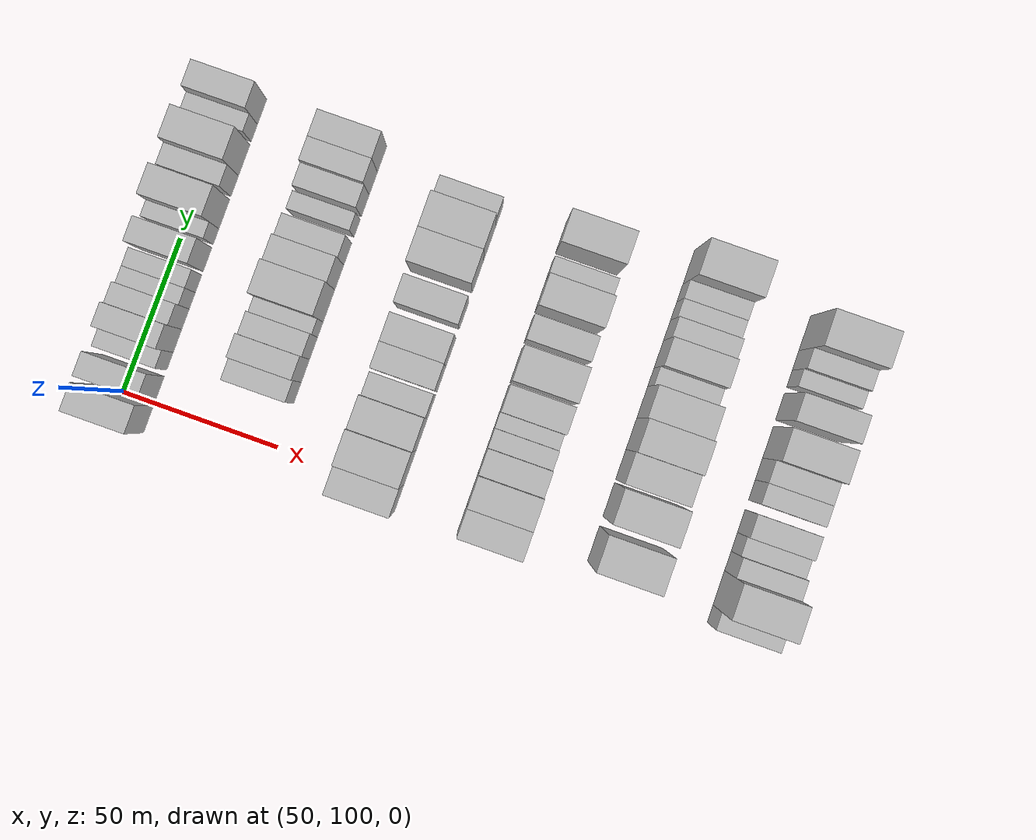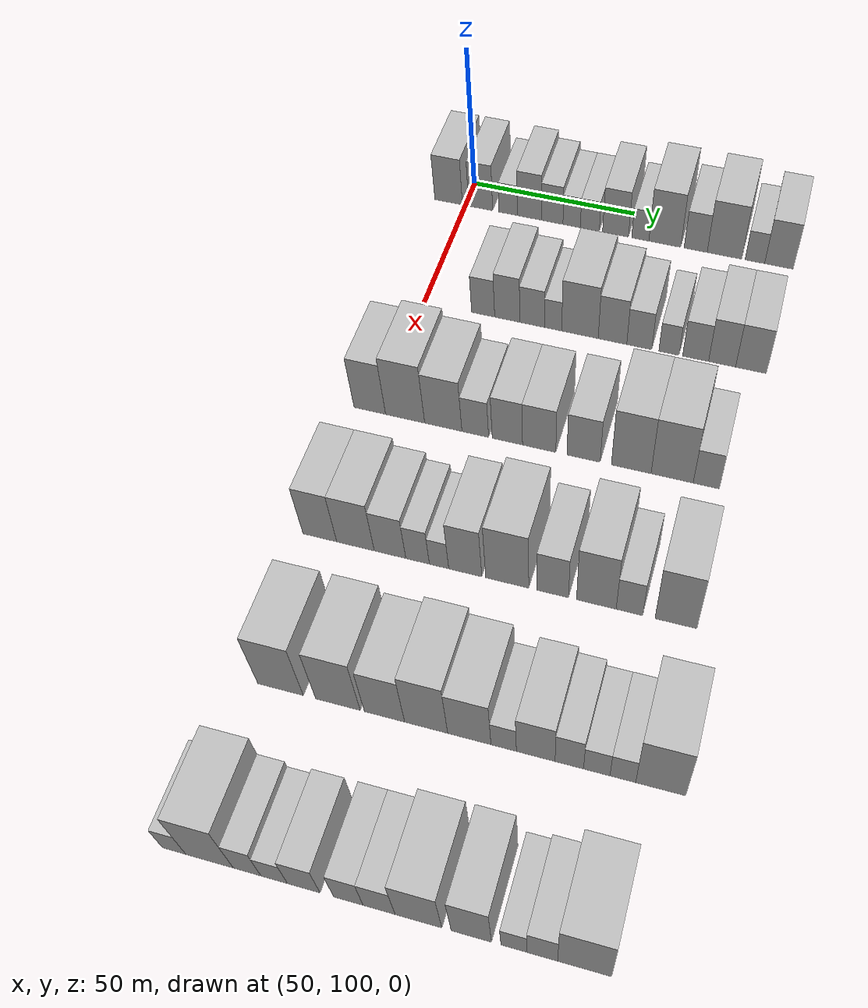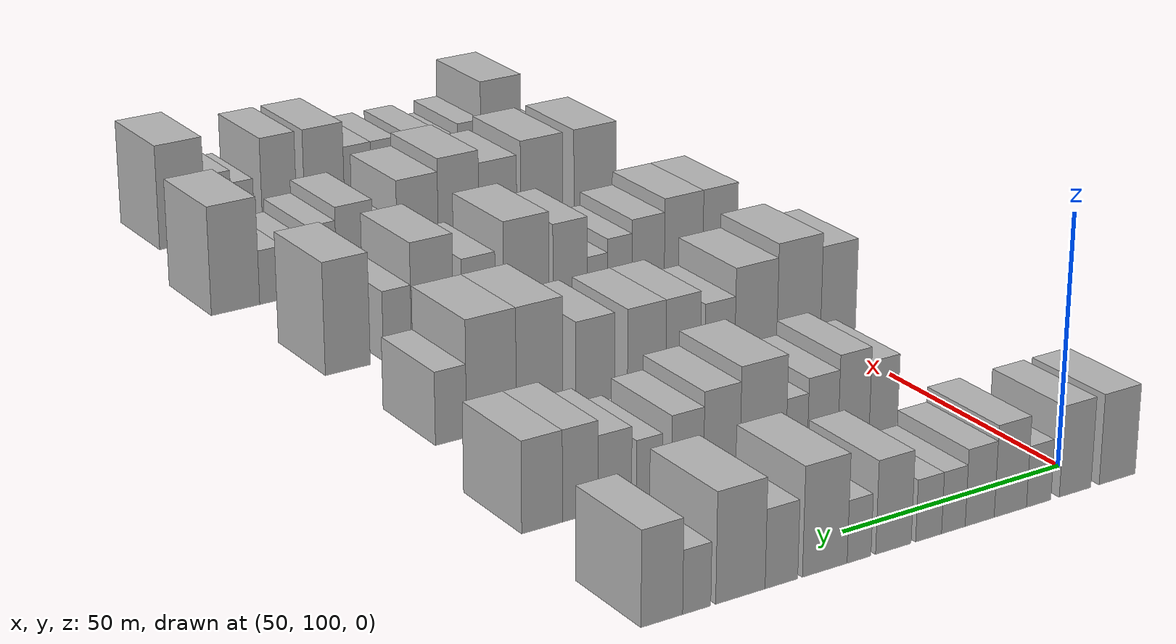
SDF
<sdf version="1.6">
 <world name="default">
  <model name="building_77">
   <static>1</static>
   <pose>50.0000 94.6935 0 0.000000 0.000000 0.000000</pose>
   <link name="link">
    <pose>0 0 9.00 0 0 0</pose>
    <collision name="collision"><geometry><box><size>20.0000 8.7373 18.0000</size></box></geometry></collision>
    <visual name="visual">
     <cast_shadows>0</cast_shadows>
     <geometry><box><size>20.0000 8.7373 18.0000</size></box></geometry>
     <material>
      <script>
       <uri>model://HANNAS_wall/materials/scripts</uri>
       <uri>model://HANNAS_wall/materials/textures</uri>
       <name>vrc/HANNAS_wall</name>
      </script>
     </material>
    </visual>
   </link>
  </model>
  <model name="building_78">
   <static>1</static>
   <pose>50.0000 104.8291 0 0.000000 0.000000 0.000000</pose>
   <link name="link">
    <pose>0 0 9.00 0 0 0</pose>
    <collision name="collision"><geometry><box><size>20.0000 7.5340 18.0000</size></box></geometry></collision>
    <visual name="visual">
     <cast_shadows>0</cast_shadows>
     <geometry><box><size>20.0000 7.5340 18.0000</size></box></geometry>
     <material>
      <script>
       <uri>model://HANNAS_wall/materials/scripts</uri>
       <uri>model://HANNAS_wall/materials/textures</uri>
       <name>vrc/HANNAS_wall</name>
      </script>
     </material>
    </visual>
   </link>
  </model>
  <model name="building_79">
   <static>1</static>
   <pose>50.0000 113.4601 0 0.000000 0.000000 0.000000</pose>
   <link name="link">
    <pose>0 0 6.00 0 0 0</pose>
    <collision name="collision"><geometry><box><size>20.0000 5.7279 12.0000</size></box></geometry></collision>
    <visual name="visual">
     <cast_shadows>0</cast_shadows>
     <geometry><box><size>20.0000 5.7279 12.0000</size></box></geometry>
     <material>
      <script>
       <uri>model://HANNAS_wall/materials/scripts</uri>
       <uri>model://HANNAS_wall/materials/textures</uri>
       <name>vrc/HANNAS_wall</name>
      </script>
     </material>
    </visual>
   </link>
  </model>
  <model name="building_80">
   <static>1</static>
   <pose>50.0000 120.0765 0 0.000000 0.000000 0.000000</pose>
   <link name="link">
    <pose>0 0 9.00 0 0 0</pose>
    <collision name="collision"><geometry><box><size>20.0000 7.5049 18.0000</size></box></geometry></collision>
    <visual name="visual">
     <cast_shadows>0</cast_shadows>
     <geometry><box><size>20.0000 7.5049 18.0000</size></box></geometry>
     <material>
      <script>
       <uri>model://HANNAS_wall/materials/scripts</uri>
       <uri>model://HANNAS_wall/materials/textures</uri>
       <name>vrc/HANNAS_wall</name>
      </script>
     </material>
    </visual>
   </link>
  </model>
  <model name="building_81">
   <static>1</static>
   <pose>50.0000 127.1485 0 0.000000 0.000000 0.000000</pose>
   <link name="link">
    <pose>0 0 7.50 0 0 0</pose>
    <collision name="collision"><geometry><box><size>20.0000 6.6391 15.0000</size></box></geometry></collision>
    <visual name="visual">
     <cast_shadows>0</cast_shadows>
     <geometry><box><size>20.0000 6.6391 15.0000</size></box></geometry>
     <material>
      <script>
       <uri>model://HANNAS_wall/materials/scripts</uri>
       <uri>model://HANNAS_wall/materials/textures</uri>
       <name>vrc/HANNAS_wall</name>
      </script>
     </material>
    </visual>
   </link>
  </model>
  <model name="building_82">
   <static>1</static>
   <pose>50.0000 133.1500 0 0.000000 0.000000 0.000000</pose>
   <link name="link">
    <pose>0 0 6.00 0 0 0</pose>
    <collision name="collision"><geometry><box><size>20.0000 5.3638 12.0000</size></box></geometry></collision>
    <visual name="visual">
     <cast_shadows>0</cast_shadows>
     <geometry><box><size>20.0000 5.3638 12.0000</size></box></geometry>
     <material>
      <script>
       <uri>model://HANNAS_wall/materials/scripts</uri>
       <uri>model://HANNAS_wall/materials/textures</uri>
       <name>vrc/HANNAS_wall</name>
      </script>
     </material>
    </visual>
   </link>
  </model>
  <model name="building_83">
   <static>1</static>
   <pose>50.0000 138.7383 0 0.000000 0.000000 0.000000</pose>
   <link name="link">
    <pose>0 0 6.00 0 0 0</pose>
    <collision name="collision"><geometry><box><size>20.0000 5.8129 12.0000</size></box></geometry></collision>
    <visual name="visual">
     <cast_shadows>0</cast_shadows>
     <geometry><box><size>20.0000 5.8129 12.0000</size></box></geometry>
     <material>
      <script>
       <uri>model://HANNAS_wall/materials/scripts</uri>
       <uri>model://HANNAS_wall/materials/textures</uri>
       <name>vrc/HANNAS_wall</name>
      </script>
     </material>
    </visual>
   </link>
  </model>
  <model name="building_84">
   <static>1</static>
   <pose>50.0000 146.5757 0 0.000000 0.000000 0.000000</pose>
   <link name="link">
    <pose>0 0 9.00 0 0 0</pose>
    <collision name="collision"><geometry><box><size>20.0000 7.8618 18.0000</size></box></geometry></collision>
    <visual name="visual">
     <cast_shadows>0</cast_shadows>
     <geometry><box><size>20.0000 7.8618 18.0000</size></box></geometry>
     <material>
      <script>
       <uri>model://HANNAS_wall/materials/scripts</uri>
       <uri>model://HANNAS_wall/materials/textures</uri>
       <name>vrc/HANNAS_wall</name>
      </script>
     </material>
    </visual>
   </link>
  </model>
  <model name="building_85">
   <static>1</static>
   <pose>50.0000 154.1038 0 0.000000 0.000000 0.000000</pose>
   <link name="link">
    <pose>0 0 6.00 0 0 0</pose>
    <collision name="collision"><geometry><box><size>20.0000 5.1944 12.0000</size></box></geometry></collision>
    <visual name="visual">
     <cast_shadows>0</cast_shadows>
     <geometry><box><size>20.0000 5.1944 12.0000</size></box></geometry>
     <material>
      <script>
       <uri>model://HANNAS_wall/materials/scripts</uri>
       <uri>model://HANNAS_wall/materials/textures</uri>
       <name>vrc/HANNAS_wall</name>
      </script>
     </material>
    </visual>
   </link>
  </model>
  <model name="building_86">
   <static>1</static>
   <pose>50.0000 161.5006 0 0.000000 0.000000 0.000000</pose>
   <link name="link">
    <pose>0 0 10.50 0 0 0</pose>
    <collision name="collision"><geometry><box><size>20.0000 9.5993 21.0000</size></box></geometry></collision>
    <visual name="visual">
     <cast_shadows>0</cast_shadows>
     <geometry><box><size>20.0000 9.5993 21.0000</size></box></geometry>
     <material>
      <script>
       <uri>model://HANNAS_wall/materials/scripts</uri>
       <uri>model://HANNAS_wall/materials/textures</uri>
       <name>vrc/HANNAS_wall</name>
      </script>
     </material>
    </visual>
   </link>
  </model>
  <model name="building_87">
   <static>1</static>
   <pose>50.0000 170.7389 0 0.000000 0.000000 0.000000</pose>
   <link name="link">
    <pose>0 0 7.50 0 0 0</pose>
    <collision name="collision"><geometry><box><size>20.0000 6.8772 15.0000</size></box></geometry></collision>
    <visual name="visual">
     <cast_shadows>0</cast_shadows>
     <geometry><box><size>20.0000 6.8772 15.0000</size></box></geometry>
     <material>
      <script>
       <uri>model://HANNAS_wall/materials/scripts</uri>
       <uri>model://HANNAS_wall/materials/textures</uri>
       <name>vrc/HANNAS_wall</name>
      </script>
     </material>
    </visual>
   </link>
  </model>
  <model name="building_88">
   <static>1</static>
   <pose>50.0000 179.3032 0 0.000000 0.000000 0.000000</pose>
   <link name="link">
    <pose>0 0 10.50 0 0 0</pose>
    <collision name="collision"><geometry><box><size>20.0000 10.2516 21.0000</size></box></geometry></collision>
    <visual name="visual">
     <cast_shadows>0</cast_shadows>
     <geometry><box><size>20.0000 10.2516 21.0000</size></box></geometry>
     <material>
      <script>
       <uri>model://HANNAS_wall/materials/scripts</uri>
       <uri>model://HANNAS_wall/materials/textures</uri>
       <name>vrc/HANNAS_wall</name>
      </script>
     </material>
    </visual>
   </link>
  </model>
  <model name="building_89">
   <static>1</static>
   <pose>50.0000 188.2996 0 0.000000 0.000000 0.000000</pose>
   <link name="link">
    <pose>0 0 6.00 0 0 0</pose>
    <collision name="collision"><geometry><box><size>20.0000 5.7411 12.0000</size></box></geometry></collision>
    <visual name="visual">
     <cast_shadows>0</cast_shadows>
     <geometry><box><size>20.0000 5.7411 12.0000</size></box></geometry>
     <material>
      <script>
       <uri>model://HANNAS_wall/materials/scripts</uri>
       <uri>model://HANNAS_wall/materials/textures</uri>
       <name>vrc/HANNAS_wall</name>
      </script>
     </material>
    </visual>
   </link>
  </model>
  <model name="building_90">
   <static>1</static>
   <pose>50.0000 195.3568 0 0.000000 0.000000 0.000000</pose>
   <link name="link">
    <pose>0 0 9.00 0 0 0</pose>
    <collision name="collision"><geometry><box><size>20.0000 8.3734 18.0000</size></box></geometry></collision>
    <visual name="visual">
     <cast_shadows>0</cast_shadows>
     <geometry><box><size>20.0000 8.3734 18.0000</size></box></geometry>
     <material>
      <script>
       <uri>model://HANNAS_wall/materials/scripts</uri>
       <uri>model://HANNAS_wall/materials/textures</uri>
       <name>vrc/HANNAS_wall</name>
      </script>
     </material>
    </visual>
   </link>
  </model>
  <model name="building_210">
   <static>1</static>
   <pose>90.0000 117.4667 0 0.000000 0.000000 0.000000</pose>
   <link name="link">
    <pose>0 0 7.50 0 0 0</pose>
    <collision name="collision"><geometry><box><size>20.0000 6.7773 15.0000</size></box></geometry></collision>
    <visual name="visual">
     <cast_shadows>0</cast_shadows>
     <geometry><box><size>20.0000 6.7773 15.0000</size></box></geometry>
     <material>
      <script>
       <uri>model://HANNAS_wall/materials/scripts</uri>
       <uri>model://HANNAS_wall/materials/textures</uri>
       <name>vrc/HANNAS_wall</name>
      </script>
     </material>
    </visual>
   </link>
  </model>
  <model name="building_211">
   <static>1</static>
   <pose>90.0000 124.5469 0 0.000000 0.000000 0.000000</pose>
   <link name="link">
    <pose>0 0 9.00 0 0 0</pose>
    <collision name="collision"><geometry><box><size>20.0000 7.3831 18.0000</size></box></geometry></collision>
    <visual name="visual">
     <cast_shadows>0</cast_shadows>
     <geometry><box><size>20.0000 7.3831 18.0000</size></box></geometry>
     <material>
      <script>
       <uri>model://HANNAS_wall/materials/scripts</uri>
       <uri>model://HANNAS_wall/materials/textures</uri>
       <name>vrc/HANNAS_wall</name>
      </script>
     </material>
    </visual>
   </link>
  </model>
  <model name="building_212">
   <static>1</static>
   <pose>90.0000 131.8180 0 0.000000 0.000000 0.000000</pose>
   <link name="link">
    <pose>0 0 7.50 0 0 0</pose>
    <collision name="collision"><geometry><box><size>20.0000 7.1590 15.0000</size></box></geometry></collision>
    <visual name="visual">
     <cast_shadows>0</cast_shadows>
     <geometry><box><size>20.0000 7.1590 15.0000</size></box></geometry>
     <material>
      <script>
       <uri>model://HANNAS_wall/materials/scripts</uri>
       <uri>model://HANNAS_wall/materials/textures</uri>
       <name>vrc/HANNAS_wall</name>
      </script>
     </material>
    </visual>
   </link>
  </model>
  <model name="building_213">
   <static>1</static>
   <pose>90.0000 137.8737 0 0.000000 0.000000 0.000000</pose>
   <link name="link">
    <pose>0 0 6.00 0 0 0</pose>
    <collision name="collision"><geometry><box><size>20.0000 4.9524 12.0000</size></box></geometry></collision>
    <visual name="visual">
     <cast_shadows>0</cast_shadows>
     <geometry><box><size>20.0000 4.9524 12.0000</size></box></geometry>
     <material>
      <script>
       <uri>model://HANNAS_wall/materials/scripts</uri>
       <uri>model://HANNAS_wall/materials/textures</uri>
       <name>vrc/HANNAS_wall</name>
      </script>
     </material>
    </visual>
   </link>
  </model>
  <model name="building_214">
   <static>1</static>
   <pose>90.0000 145.5981 0 0.000000 0.000000 0.000000</pose>
   <link name="link">
    <pose>0 0 10.50 0 0 0</pose>
    <collision name="collision"><geometry><box><size>20.0000 10.4965 21.0000</size></box></geometry></collision>
    <visual name="visual">
     <cast_shadows>0</cast_shadows>
     <geometry><box><size>20.0000 10.4965 21.0000</size></box></geometry>
     <material>
      <script>
       <uri>model://HANNAS_wall/materials/scripts</uri>
       <uri>model://HANNAS_wall/materials/textures</uri>
       <name>vrc/HANNAS_wall</name>
      </script>
     </material>
    </visual>
   </link>
  </model>
  <model name="building_215">
   <static>1</static>
   <pose>90.0000 154.9181 0 0.000000 0.000000 0.000000</pose>
   <link name="link">
    <pose>0 0 9.00 0 0 0</pose>
    <collision name="collision"><geometry><box><size>20.0000 8.1435 18.0000</size></box></geometry></collision>
    <visual name="visual">
     <cast_shadows>0</cast_shadows>
     <geometry><box><size>20.0000 8.1435 18.0000</size></box></geometry>
     <material>
      <script>
       <uri>model://HANNAS_wall/materials/scripts</uri>
       <uri>model://HANNAS_wall/materials/textures</uri>
       <name>vrc/HANNAS_wall</name>
      </script>
     </material>
    </visual>
   </link>
  </model>
  <model name="building_216">
   <static>1</static>
   <pose>90.0000 162.5359 0 0.000000 0.000000 0.000000</pose>
   <link name="link">
    <pose>0 0 7.50 0 0 0</pose>
    <collision name="collision"><geometry><box><size>20.0000 7.0922 15.0000</size></box></geometry></collision>
    <visual name="visual">
     <cast_shadows>0</cast_shadows>
     <geometry><box><size>20.0000 7.0922 15.0000</size></box></geometry>
     <material>
      <script>
       <uri>model://HANNAS_wall/materials/scripts</uri>
       <uri>model://HANNAS_wall/materials/textures</uri>
       <name>vrc/HANNAS_wall</name>
      </script>
     </material>
    </visual>
   </link>
  </model>
  <model name="building_217">
   <static>1</static>
   <pose>90.0000 170.9199 0 0.000000 0.000000 0.000000</pose>
   <link name="link">
    <pose>0 0 6.00 0 0 0</pose>
    <collision name="collision"><geometry><box><size>20.0000 5.6758 12.0000</size></box></geometry></collision>
    <visual name="visual">
     <cast_shadows>0</cast_shadows>
     <geometry><box><size>20.0000 5.6758 12.0000</size></box></geometry>
     <material>
      <script>
       <uri>model://HANNAS_wall/materials/scripts</uri>
       <uri>model://HANNAS_wall/materials/textures</uri>
       <name>vrc/HANNAS_wall</name>
      </script>
     </material>
    </visual>
   </link>
  </model>
  <model name="building_218">
   <static>1</static>
   <pose>90.0000 178.3752 0 0.000000 0.000000 0.000000</pose>
   <link name="link">
    <pose>0 0 7.50 0 0 0</pose>
    <collision name="collision"><geometry><box><size>20.0000 7.2348 15.0000</size></box></geometry></collision>
    <visual name="visual">
     <cast_shadows>0</cast_shadows>
     <geometry><box><size>20.0000 7.2348 15.0000</size></box></geometry>
     <material>
      <script>
       <uri>model://HANNAS_wall/materials/scripts</uri>
       <uri>model://HANNAS_wall/materials/textures</uri>
       <name>vrc/HANNAS_wall</name>
      </script>
     </material>
    </visual>
   </link>
  </model>
  <model name="building_219">
   <static>1</static>
   <pose>90.0000 185.7422 0 0.000000 0.000000 0.000000</pose>
   <link name="link">
    <pose>0 0 9.00 0 0 0</pose>
    <collision name="collision"><geometry><box><size>20.0000 7.4992 18.0000</size></box></geometry></collision>
    <visual name="visual">
     <cast_shadows>0</cast_shadows>
     <geometry><box><size>20.0000 7.4992 18.0000</size></box></geometry>
     <material>
      <script>
       <uri>model://HANNAS_wall/materials/scripts</uri>
       <uri>model://HANNAS_wall/materials/textures</uri>
       <name>vrc/HANNAS_wall</name>
      </script>
     </material>
    </visual>
   </link>
  </model>
  <model name="building_220">
   <static>1</static>
   <pose>90.0000 193.7392 0 0.000000 0.000000 0.000000</pose>
   <link name="link">
    <pose>0 0 9.00 0 0 0</pose>
    <collision name="collision"><geometry><box><size>20.0000 8.4949 18.0000</size></box></geometry></collision>
    <visual name="visual">
     <cast_shadows>0</cast_shadows>
     <geometry><box><size>20.0000 8.4949 18.0000</size></box></geometry>
     <material>
      <script>
       <uri>model://HANNAS_wall/materials/scripts</uri>
       <uri>model://HANNAS_wall/materials/textures</uri>
       <name>vrc/HANNAS_wall</name>
      </script>
     </material>
    </visual>
   </link>
  </model>
  <model name="building_349">
   <static>1</static>
   <pose>130.0000 97.7997 0 0.000000 0.000000 0.000000</pose>
   <link name="link">
    <pose>0 0 10.50 0 0 0</pose>
    <collision name="collision"><geometry><box><size>20.0000 8.8986 21.0000</size></box></geometry></collision>
    <visual name="visual">
     <cast_shadows>0</cast_shadows>
     <geometry><box><size>20.0000 8.8986 21.0000</size></box></geometry>
     <material>
      <script>
       <uri>model://HANNAS_wall/materials/scripts</uri>
       <uri>model://HANNAS_wall/materials/textures</uri>
       <name>vrc/HANNAS_wall</name>
      </script>
     </material>
    </visual>
   </link>
  </model>
  <model name="building_350">
   <static>1</static>
   <pose>130.0000 107.7128 0 0.000000 0.000000 0.000000</pose>
   <link name="link">
    <pose>0 0 12.00 0 0 0</pose>
    <collision name="collision"><geometry><box><size>20.0000 10.9276 24.0000</size></box></geometry></collision>
    <visual name="visual">
     <cast_shadows>0</cast_shadows>
     <geometry><box><size>20.0000 10.9276 24.0000</size></box></geometry>
     <material>
      <script>
       <uri>model://HANNAS_wall/materials/scripts</uri>
       <uri>model://HANNAS_wall/materials/textures</uri>
       <name>vrc/HANNAS_wall</name>
      </script>
     </material>
    </visual>
   </link>
  </model>
  <model name="building_351">
   <static>1</static>
   <pose>130.0000 118.3337 0 0.000000 0.000000 0.000000</pose>
   <link name="link">
    <pose>0 0 10.50 0 0 0</pose>
    <collision name="collision"><geometry><box><size>20.0000 10.3141 21.0000</size></box></geometry></collision>
    <visual name="visual">
     <cast_shadows>0</cast_shadows>
     <geometry><box><size>20.0000 10.3141 21.0000</size></box></geometry>
     <material>
      <script>
       <uri>model://HANNAS_wall/materials/scripts</uri>
       <uri>model://HANNAS_wall/materials/textures</uri>
       <name>vrc/HANNAS_wall</name>
      </script>
     </material>
    </visual>
   </link>
  </model>
  <model name="building_352">
   <static>1</static>
   <pose>130.0000 127.1517 0 0.000000 0.000000 0.000000</pose>
   <link name="link">
    <pose>0 0 7.50 0 0 0</pose>
    <collision name="collision"><geometry><box><size>20.0000 7.3220 15.0000</size></box></geometry></collision>
    <visual name="visual">
     <cast_shadows>0</cast_shadows>
     <geometry><box><size>20.0000 7.3220 15.0000</size></box></geometry>
     <material>
      <script>
       <uri>model://HANNAS_wall/materials/scripts</uri>
       <uri>model://HANNAS_wall/materials/textures</uri>
       <name>vrc/HANNAS_wall</name>
      </script>
     </material>
    </visual>
   </link>
  </model>
  <model name="building_353">
   <static>1</static>
   <pose>130.0000 135.9371 0 0.000000 0.000000 0.000000</pose>
   <link name="link">
    <pose>0 0 9.00 0 0 0</pose>
    <collision name="collision"><geometry><box><size>20.0000 8.2489 18.0000</size></box></geometry></collision>
    <visual name="visual">
     <cast_shadows>0</cast_shadows>
     <geometry><box><size>20.0000 8.2489 18.0000</size></box></geometry>
     <material>
      <script>
       <uri>model://HANNAS_wall/materials/scripts</uri>
       <uri>model://HANNAS_wall/materials/textures</uri>
       <name>vrc/HANNAS_wall</name>
      </script>
     </material>
    </visual>
   </link>
  </model>
  <model name="building_354">
   <static>1</static>
   <pose>130.0000 144.5602 0 0.000000 0.000000 0.000000</pose>
   <link name="link">
    <pose>0 0 9.00 0 0 0</pose>
    <collision name="collision"><geometry><box><size>20.0000 8.9973 18.0000</size></box></geometry></collision>
    <visual name="visual">
     <cast_shadows>0</cast_shadows>
     <geometry><box><size>20.0000 8.9973 18.0000</size></box></geometry>
     <material>
      <script>
       <uri>model://HANNAS_wall/materials/scripts</uri>
       <uri>model://HANNAS_wall/materials/textures</uri>
       <name>vrc/HANNAS_wall</name>
      </script>
     </material>
    </visual>
   </link>
  </model>
  <model name="building_355">
   <static>1</static>
   <pose>130.0000 156.4949 0 0.000000 0.000000 0.000000</pose>
   <link name="link">
    <pose>0 0 9.00 0 0 0</pose>
    <collision name="collision"><geometry><box><size>20.0000 8.8720 18.0000</size></box></geometry></collision>
    <visual name="visual">
     <cast_shadows>0</cast_shadows>
     <geometry><box><size>20.0000 8.8720 18.0000</size></box></geometry>
     <material>
      <script>
       <uri>model://HANNAS_wall/materials/scripts</uri>
       <uri>model://HANNAS_wall/materials/textures</uri>
       <name>vrc/HANNAS_wall</name>
      </script>
     </material>
    </visual>
   </link>
  </model>
  <model name="building_356">
   <static>1</static>
   <pose>130.0000 169.1600 0 0.000000 0.000000 0.000000</pose>
   <link name="link">
    <pose>0 0 12.00 0 0 0</pose>
    <collision name="collision"><geometry><box><size>20.0000 10.4582 24.0000</size></box></geometry></collision>
    <visual name="visual">
     <cast_shadows>0</cast_shadows>
     <geometry><box><size>20.0000 10.4582 24.0000</size></box></geometry>
     <material>
      <script>
       <uri>model://HANNAS_wall/materials/scripts</uri>
       <uri>model://HANNAS_wall/materials/textures</uri>
       <name>vrc/HANNAS_wall</name>
      </script>
     </material>
    </visual>
   </link>
  </model>
  <model name="building_357">
   <static>1</static>
   <pose>130.0000 179.9009 0 0.000000 0.000000 0.000000</pose>
   <link name="link">
    <pose>0 0 12.00 0 0 0</pose>
    <collision name="collision"><geometry><box><size>20.0000 11.0237 24.0000</size></box></geometry></collision>
    <visual name="visual">
     <cast_shadows>0</cast_shadows>
     <geometry><box><size>20.0000 11.0237 24.0000</size></box></geometry>
     <material>
      <script>
       <uri>model://HANNAS_wall/materials/scripts</uri>
       <uri>model://HANNAS_wall/materials/textures</uri>
       <name>vrc/HANNAS_wall</name>
      </script>
     </material>
    </visual>
   </link>
  </model>
  <model name="building_358">
   <static>1</static>
   <pose>130.0000 188.8137 0 0.000000 0.000000 0.000000</pose>
   <link name="link">
    <pose>0 0 7.50 0 0 0</pose>
    <collision name="collision"><geometry><box><size>20.0000 6.8020 15.0000</size></box></geometry></collision>
    <visual name="visual">
     <cast_shadows>0</cast_shadows>
     <geometry><box><size>20.0000 6.8020 15.0000</size></box></geometry>
     <material>
      <script>
       <uri>model://HANNAS_wall/materials/scripts</uri>
       <uri>model://HANNAS_wall/materials/textures</uri>
       <name>vrc/HANNAS_wall</name>
      </script>
     </material>
    </visual>
   </link>
  </model>
  <model name="building_487">
   <static>1</static>
   <pose>170.0000 98.8695 0 0.000000 0.000000 0.000000</pose>
   <link name="link">
    <pose>0 0 10.50 0 0 0</pose>
    <collision name="collision"><geometry><box><size>20.0000 8.9177 21.0000</size></box></geometry></collision>
    <visual name="visual">
     <cast_shadows>0</cast_shadows>
     <geometry><box><size>20.0000 8.9177 21.0000</size></box></geometry>
     <material>
      <script>
       <uri>model://HANNAS_wall/materials/scripts</uri>
       <uri>model://HANNAS_wall/materials/textures</uri>
       <name>vrc/HANNAS_wall</name>
      </script>
     </material>
    </visual>
   </link>
  </model>
  <model name="building_488">
   <static>1</static>
   <pose>170.0000 108.2533 0 0.000000 0.000000 0.000000</pose>
   <link name="link">
    <pose>0 0 10.50 0 0 0</pose>
    <collision name="collision"><geometry><box><size>20.0000 9.8498 21.0000</size></box></geometry></collision>
    <visual name="visual">
     <cast_shadows>0</cast_shadows>
     <geometry><box><size>20.0000 9.8498 21.0000</size></box></geometry>
     <material>
      <script>
       <uri>model://HANNAS_wall/materials/scripts</uri>
       <uri>model://HANNAS_wall/materials/textures</uri>
       <name>vrc/HANNAS_wall</name>
      </script>
     </material>
    </visual>
   </link>
  </model>
  <model name="building_489">
   <static>1</static>
   <pose>170.0000 117.2741 0 0.000000 0.000000 0.000000</pose>
   <link name="link">
    <pose>0 0 9.00 0 0 0</pose>
    <collision name="collision"><geometry><box><size>20.0000 8.1919 18.0000</size></box></geometry></collision>
    <visual name="visual">
     <cast_shadows>0</cast_shadows>
     <geometry><box><size>20.0000 8.1919 18.0000</size></box></geometry>
     <material>
      <script>
       <uri>model://HANNAS_wall/materials/scripts</uri>
       <uri>model://HANNAS_wall/materials/textures</uri>
       <name>vrc/HANNAS_wall</name>
      </script>
     </material>
    </visual>
   </link>
  </model>
  <model name="building_490">
   <static>1</static>
   <pose>170.0000 124.4101 0 0.000000 0.000000 0.000000</pose>
   <link name="link">
    <pose>0 0 7.50 0 0 0</pose>
    <collision name="collision"><geometry><box><size>20.0000 6.0800 15.0000</size></box></geometry></collision>
    <visual name="visual">
     <cast_shadows>0</cast_shadows>
     <geometry><box><size>20.0000 6.0800 15.0000</size></box></geometry>
     <material>
      <script>
       <uri>model://HANNAS_wall/materials/scripts</uri>
       <uri>model://HANNAS_wall/materials/textures</uri>
       <name>vrc/HANNAS_wall</name>
      </script>
     </material>
    </visual>
   </link>
  </model>
  <model name="building_491">
   <static>1</static>
   <pose>170.0000 129.9347 0 0.000000 0.000000 0.000000</pose>
   <link name="link">
    <pose>0 0 6.00 0 0 0</pose>
    <collision name="collision"><geometry><box><size>20.0000 4.9691 12.0000</size></box></geometry></collision>
    <visual name="visual">
     <cast_shadows>0</cast_shadows>
     <geometry><box><size>20.0000 4.9691 12.0000</size></box></geometry>
     <material>
      <script>
       <uri>model://HANNAS_wall/materials/scripts</uri>
       <uri>model://HANNAS_wall/materials/textures</uri>
       <name>vrc/HANNAS_wall</name>
      </script>
     </material>
    </visual>
   </link>
  </model>
  <model name="building_492">
   <static>1</static>
   <pose>170.0000 136.6365 0 0.000000 0.000000 0.000000</pose>
   <link name="link">
    <pose>0 0 10.50 0 0 0</pose>
    <collision name="collision"><geometry><box><size>20.0000 8.4347 21.0000</size></box></geometry></collision>
    <visual name="visual">
     <cast_shadows>0</cast_shadows>
     <geometry><box><size>20.0000 8.4347 21.0000</size></box></geometry>
     <material>
      <script>
       <uri>model://HANNAS_wall/materials/scripts</uri>
       <uri>model://HANNAS_wall/materials/textures</uri>
       <name>vrc/HANNAS_wall</name>
      </script>
     </material>
    </visual>
   </link>
  </model>
  <model name="building_493">
   <static>1</static>
   <pose>170.0000 147.2820 0 0.000000 0.000000 0.000000</pose>
   <link name="link">
    <pose>0 0 12.00 0 0 0</pose>
    <collision name="collision"><geometry><box><size>20.0000 10.8562 24.0000</size></box></geometry></collision>
    <visual name="visual">
     <cast_shadows>0</cast_shadows>
     <geometry><box><size>20.0000 10.8562 24.0000</size></box></geometry>
     <material>
      <script>
       <uri>model://HANNAS_wall/materials/scripts</uri>
       <uri>model://HANNAS_wall/materials/textures</uri>
       <name>vrc/HANNAS_wall</name>
      </script>
     </material>
    </visual>
   </link>
  </model>
  <model name="building_494">
   <static>1</static>
   <pose>170.0000 158.6580 0 0.000000 0.000000 0.000000</pose>
   <link name="link">
    <pose>0 0 9.00 0 0 0</pose>
    <collision name="collision"><geometry><box><size>20.0000 7.8958 18.0000</size></box></geometry></collision>
    <visual name="visual">
     <cast_shadows>0</cast_shadows>
     <geometry><box><size>20.0000 7.8958 18.0000</size></box></geometry>
     <material>
      <script>
       <uri>model://HANNAS_wall/materials/scripts</uri>
       <uri>model://HANNAS_wall/materials/textures</uri>
       <name>vrc/HANNAS_wall</name>
      </script>
     </material>
    </visual>
   </link>
  </model>
  <model name="building_495">
   <static>1</static>
   <pose>170.0000 169.4904 0 0.000000 0.000000 0.000000</pose>
   <link name="link">
    <pose>0 0 12.00 0 0 0</pose>
    <collision name="collision"><geometry><box><size>20.0000 9.7691 24.0000</size></box></geometry></collision>
    <visual name="visual">
     <cast_shadows>0</cast_shadows>
     <geometry><box><size>20.0000 9.7691 24.0000</size></box></geometry>
     <material>
      <script>
       <uri>model://HANNAS_wall/materials/scripts</uri>
       <uri>model://HANNAS_wall/materials/textures</uri>
       <name>vrc/HANNAS_wall</name>
      </script>
     </material>
    </visual>
   </link>
  </model>
  <model name="building_496">
   <static>1</static>
   <pose>170.0000 177.6255 0 0.000000 0.000000 0.000000</pose>
   <link name="link">
    <pose>0 0 7.50 0 0 0</pose>
    <collision name="collision"><geometry><box><size>20.0000 6.5010 15.0000</size></box></geometry></collision>
    <visual name="visual">
     <cast_shadows>0</cast_shadows>
     <geometry><box><size>20.0000 6.5010 15.0000</size></box></geometry>
     <material>
      <script>
       <uri>model://HANNAS_wall/materials/scripts</uri>
       <uri>model://HANNAS_wall/materials/textures</uri>
       <name>vrc/HANNAS_wall</name>
      </script>
     </material>
    </visual>
   </link>
  </model>
  <model name="building_497">
   <static>1</static>
   <pose>170.0000 188.9468 0 0.000000 0.000000 0.000000</pose>
   <link name="link">
    <pose>0 0 12.00 0 0 0</pose>
    <collision name="collision"><geometry><box><size>20.0000 10.1418 24.0000</size></box></geometry></collision>
    <visual name="visual">
     <cast_shadows>0</cast_shadows>
     <geometry><box><size>20.0000 10.1418 24.0000</size></box></geometry>
     <material>
      <script>
       <uri>model://HANNAS_wall/materials/scripts</uri>
       <uri>model://HANNAS_wall/materials/textures</uri>
       <name>vrc/HANNAS_wall</name>
      </script>
     </material>
    </visual>
   </link>
  </model>
  <model name="building_621">
   <static>1</static>
   <pose>210.0000 104.5061 0 0.000000 0.000000 0.000000</pose>
   <link name="link">
    <pose>0 0 12.00 0 0 0</pose>
    <collision name="collision"><geometry><box><size>20.0000 11.1974 24.0000</size></box></geometry></collision>
    <visual name="visual">
     <cast_shadows>0</cast_shadows>
     <geometry><box><size>20.0000 11.1974 24.0000</size></box></geometry>
     <material>
      <script>
       <uri>model://HANNAS_wall/materials/scripts</uri>
       <uri>model://HANNAS_wall/materials/textures</uri>
       <name>vrc/HANNAS_wall</name>
      </script>
     </material>
    </visual>
   </link>
  </model>
  <model name="building_622">
   <static>1</static>
   <pose>210.0000 118.5058 0 0.000000 0.000000 0.000000</pose>
   <link name="link">
    <pose>0 0 12.00 0 0 0</pose>
    <collision name="collision"><geometry><box><size>20.0000 10.8020 24.0000</size></box></geometry></collision>
    <visual name="visual">
     <cast_shadows>0</cast_shadows>
     <geometry><box><size>20.0000 10.8020 24.0000</size></box></geometry>
     <material>
      <script>
       <uri>model://HANNAS_wall/materials/scripts</uri>
       <uri>model://HANNAS_wall/materials/textures</uri>
       <name>vrc/HANNAS_wall</name>
      </script>
     </material>
    </visual>
   </link>
  </model>
  <model name="building_623">
   <static>1</static>
   <pose>210.0000 129.7228 0 0.000000 0.000000 0.000000</pose>
   <link name="link">
    <pose>0 0 10.50 0 0 0</pose>
    <collision name="collision"><geometry><box><size>20.0000 9.6320 21.0000</size></box></geometry></collision>
    <visual name="visual">
     <cast_shadows>0</cast_shadows>
     <geometry><box><size>20.0000 9.6320 21.0000</size></box></geometry>
     <material>
      <script>
       <uri>model://HANNAS_wall/materials/scripts</uri>
       <uri>model://HANNAS_wall/materials/textures</uri>
       <name>vrc/HANNAS_wall</name>
      </script>
     </material>
    </visual>
   </link>
  </model>
  <model name="building_624">
   <static>1</static>
   <pose>210.0000 139.6404 0 0.000000 0.000000 0.000000</pose>
   <link name="link">
    <pose>0 0 12.00 0 0 0</pose>
    <collision name="collision"><geometry><box><size>20.0000 10.2032 24.0000</size></box></geometry></collision>
    <visual name="visual">
     <cast_shadows>0</cast_shadows>
     <geometry><box><size>20.0000 10.2032 24.0000</size></box></geometry>
     <material>
      <script>
       <uri>model://HANNAS_wall/materials/scripts</uri>
       <uri>model://HANNAS_wall/materials/textures</uri>
       <name>vrc/HANNAS_wall</name>
      </script>
     </material>
    </visual>
   </link>
  </model>
  <model name="building_625">
   <static>1</static>
   <pose>210.0000 149.8112 0 0.000000 0.000000 0.000000</pose>
   <link name="link">
    <pose>0 0 10.50 0 0 0</pose>
    <collision name="collision"><geometry><box><size>20.0000 10.1385 21.0000</size></box></geometry></collision>
    <visual name="visual">
     <cast_shadows>0</cast_shadows>
     <geometry><box><size>20.0000 10.1385 21.0000</size></box></geometry>
     <material>
      <script>
       <uri>model://HANNAS_wall/materials/scripts</uri>
       <uri>model://HANNAS_wall/materials/textures</uri>
       <name>vrc/HANNAS_wall</name>
      </script>
     </material>
    </visual>
   </link>
  </model>
  <model name="building_626">
   <static>1</static>
   <pose>210.0000 157.8289 0 0.000000 0.000000 0.000000</pose>
   <link name="link">
    <pose>0 0 6.00 0 0 0</pose>
    <collision name="collision"><geometry><box><size>20.0000 5.8968 12.0000</size></box></geometry></collision>
    <visual name="visual">
     <cast_shadows>0</cast_shadows>
     <geometry><box><size>20.0000 5.8968 12.0000</size></box></geometry>
     <material>
      <script>
       <uri>model://HANNAS_wall/materials/scripts</uri>
       <uri>model://HANNAS_wall/materials/textures</uri>
       <name>vrc/HANNAS_wall</name>
      </script>
     </material>
    </visual>
   </link>
  </model>
  <model name="building_627">
   <static>1</static>
   <pose>210.0000 165.2243 0 0.000000 0.000000 0.000000</pose>
   <link name="link">
    <pose>0 0 9.00 0 0 0</pose>
    <collision name="collision"><geometry><box><size>20.0000 8.8940 18.0000</size></box></geometry></collision>
    <visual name="visual">
     <cast_shadows>0</cast_shadows>
     <geometry><box><size>20.0000 8.8940 18.0000</size></box></geometry>
     <material>
      <script>
       <uri>model://HANNAS_wall/materials/scripts</uri>
       <uri>model://HANNAS_wall/materials/textures</uri>
       <name>vrc/HANNAS_wall</name>
      </script>
     </material>
    </visual>
   </link>
  </model>
  <model name="building_628">
   <static>1</static>
   <pose>210.0000 172.9288 0 0.000000 0.000000 0.000000</pose>
   <link name="link">
    <pose>0 0 7.50 0 0 0</pose>
    <collision name="collision"><geometry><box><size>20.0000 6.5150 15.0000</size></box></geometry></collision>
    <visual name="visual">
     <cast_shadows>0</cast_shadows>
     <geometry><box><size>20.0000 6.5150 15.0000</size></box></geometry>
     <material>
      <script>
       <uri>model://HANNAS_wall/materials/scripts</uri>
       <uri>model://HANNAS_wall/materials/textures</uri>
       <name>vrc/HANNAS_wall</name>
      </script>
     </material>
    </visual>
   </link>
  </model>
  <model name="building_629">
   <static>1</static>
   <pose>210.0000 179.1774 0 0.000000 0.000000 0.000000</pose>
   <link name="link">
    <pose>0 0 6.00 0 0 0</pose>
    <collision name="collision"><geometry><box><size>20.0000 5.9823 12.0000</size></box></geometry></collision>
    <visual name="visual">
     <cast_shadows>0</cast_shadows>
     <geometry><box><size>20.0000 5.9823 12.0000</size></box></geometry>
     <material>
      <script>
       <uri>model://HANNAS_wall/materials/scripts</uri>
       <uri>model://HANNAS_wall/materials/textures</uri>
       <name>vrc/HANNAS_wall</name>
      </script>
     </material>
    </visual>
   </link>
  </model>
  <model name="building_630">
   <static>1</static>
   <pose>210.0000 185.0651 0 0.000000 0.000000 0.000000</pose>
   <link name="link">
    <pose>0 0 6.00 0 0 0</pose>
    <collision name="collision"><geometry><box><size>20.0000 5.7930 12.0000</size></box></geometry></collision>
    <visual name="visual">
     <cast_shadows>0</cast_shadows>
     <geometry><box><size>20.0000 5.7930 12.0000</size></box></geometry>
     <material>
      <script>
       <uri>model://HANNAS_wall/materials/scripts</uri>
       <uri>model://HANNAS_wall/materials/textures</uri>
       <name>vrc/HANNAS_wall</name>
      </script>
     </material>
    </visual>
   </link>
  </model>
  <model name="building_631">
   <static>1</static>
   <pose>210.0000 193.5599 0 0.000000 0.000000 0.000000</pose>
   <link name="link">
    <pose>0 0 12.00 0 0 0</pose>
    <collision name="collision"><geometry><box><size>20.0000 11.1966 24.0000</size></box></geometry></collision>
    <visual name="visual">
     <cast_shadows>0</cast_shadows>
     <geometry><box><size>20.0000 11.1966 24.0000</size></box></geometry>
     <material>
      <script>
       <uri>model://HANNAS_wall/materials/scripts</uri>
       <uri>model://HANNAS_wall/materials/textures</uri>
       <name>vrc/HANNAS_wall</name>
      </script>
     </material>
    </visual>
   </link>
  </model>
  <model name="building_756">
   <static>1</static>
   <pose>250.0000 96.3720 0 0.000000 0.000000 0.000000</pose>
   <link name="link">
    <pose>0 0 6.00 0 0 0</pose>
    <collision name="collision"><geometry><box><size>20.0000 5.4245 12.0000</size></box></geometry></collision>
    <visual name="visual">
     <cast_shadows>0</cast_shadows>
     <geometry><box><size>20.0000 5.4245 12.0000</size></box></geometry>
     <material>
      <script>
       <uri>model://HANNAS_wall/materials/scripts</uri>
       <uri>model://HANNAS_wall/materials/textures</uri>
       <name>vrc/HANNAS_wall</name>
      </script>
     </material>
    </visual>
   </link>
  </model>
  <model name="building_757">
   <static>1</static>
   <pose>250.0000 104.5191 0 0.000000 0.000000 0.000000</pose>
   <link name="link">
    <pose>0 0 12.00 0 0 0</pose>
    <collision name="collision"><geometry><box><size>20.0000 10.8697 24.0000</size></box></geometry></collision>
    <visual name="visual">
     <cast_shadows>0</cast_shadows>
     <geometry><box><size>20.0000 10.8697 24.0000</size></box></geometry>
     <material>
      <script>
       <uri>model://HANNAS_wall/materials/scripts</uri>
       <uri>model://HANNAS_wall/materials/textures</uri>
       <name>vrc/HANNAS_wall</name>
      </script>
     </material>
    </visual>
   </link>
  </model>
  <model name="building_758">
   <static>1</static>
   <pose>250.0000 113.0737 0 0.000000 0.000000 0.000000</pose>
   <link name="link">
    <pose>0 0 7.50 0 0 0</pose>
    <collision name="collision"><geometry><box><size>20.0000 6.2394 15.0000</size></box></geometry></collision>
    <visual name="visual">
     <cast_shadows>0</cast_shadows>
     <geometry><box><size>20.0000 6.2394 15.0000</size></box></geometry>
     <material>
      <script>
       <uri>model://HANNAS_wall/materials/scripts</uri>
       <uri>model://HANNAS_wall/materials/textures</uri>
       <name>vrc/HANNAS_wall</name>
      </script>
     </material>
    </visual>
   </link>
  </model>
  <model name="building_759">
   <static>1</static>
   <pose>250.0000 119.1723 0 0.000000 0.000000 0.000000</pose>
   <link name="link">
    <pose>0 0 6.00 0 0 0</pose>
    <collision name="collision"><geometry><box><size>20.0000 5.9579 12.0000</size></box></geometry></collision>
    <visual name="visual">
     <cast_shadows>0</cast_shadows>
     <geometry><box><size>20.0000 5.9579 12.0000</size></box></geometry>
     <material>
      <script>
       <uri>model://HANNAS_wall/materials/scripts</uri>
       <uri>model://HANNAS_wall/materials/textures</uri>
       <name>vrc/HANNAS_wall</name>
      </script>
     </material>
    </visual>
   </link>
  </model>
  <model name="building_760">
   <static>1</static>
   <pose>250.0000 125.7960 0 0.000000 0.000000 0.000000</pose>
   <link name="link">
    <pose>0 0 7.50 0 0 0</pose>
    <collision name="collision"><geometry><box><size>20.0000 7.2895 15.0000</size></box></geometry></collision>
    <visual name="visual">
     <cast_shadows>0</cast_shadows>
     <geometry><box><size>20.0000 7.2895 15.0000</size></box></geometry>
     <material>
      <script>
       <uri>model://HANNAS_wall/materials/scripts</uri>
       <uri>model://HANNAS_wall/materials/textures</uri>
       <name>vrc/HANNAS_wall</name>
      </script>
     </material>
    </visual>
   </link>
  </model>
  <model name="building_761">
   <static>1</static>
   <pose>250.0000 135.6953 0 0.000000 0.000000 0.000000</pose>
   <link name="link">
    <pose>0 0 7.50 0 0 0</pose>
    <collision name="collision"><geometry><box><size>20.0000 6.5090 15.0000</size></box></geometry></collision>
    <visual name="visual">
     <cast_shadows>0</cast_shadows>
     <geometry><box><size>20.0000 6.5090 15.0000</size></box></geometry>
     <material>
      <script>
       <uri>model://HANNAS_wall/materials/scripts</uri>
       <uri>model://HANNAS_wall/materials/textures</uri>
       <name>vrc/HANNAS_wall</name>
      </script>
     </material>
    </visual>
   </link>
  </model>
  <model name="building_762">
   <static>1</static>
   <pose>250.0000 142.4475 0 0.000000 0.000000 0.000000</pose>
   <link name="link">
    <pose>0 0 7.50 0 0 0</pose>
    <collision name="collision"><geometry><box><size>20.0000 6.9955 15.0000</size></box></geometry></collision>
    <visual name="visual">
     <cast_shadows>0</cast_shadows>
     <geometry><box><size>20.0000 6.9955 15.0000</size></box></geometry>
     <material>
      <script>
       <uri>model://HANNAS_wall/materials/scripts</uri>
       <uri>model://HANNAS_wall/materials/textures</uri>
       <name>vrc/HANNAS_wall</name>
      </script>
     </material>
    </visual>
   </link>
  </model>
  <model name="building_763">
   <static>1</static>
   <pose>250.0000 151.0088 0 0.000000 0.000000 0.000000</pose>
   <link name="link">
    <pose>0 0 10.50 0 0 0</pose>
    <collision name="collision"><geometry><box><size>20.0000 10.1271 21.0000</size></box></geometry></collision>
    <visual name="visual">
     <cast_shadows>0</cast_shadows>
     <geometry><box><size>20.0000 10.1271 21.0000</size></box></geometry>
     <material>
      <script>
       <uri>model://HANNAS_wall/materials/scripts</uri>
       <uri>model://HANNAS_wall/materials/textures</uri>
       <name>vrc/HANNAS_wall</name>
      </script>
     </material>
    </visual>
   </link>
  </model>
  <model name="building_764">
   <static>1</static>
   <pose>250.0000 162.3839 0 0.000000 0.000000 0.000000</pose>
   <link name="link">
    <pose>0 0 10.50 0 0 0</pose>
    <collision name="collision"><geometry><box><size>20.0000 8.6231 21.0000</size></box></geometry></collision>
    <visual name="visual">
     <cast_shadows>0</cast_shadows>
     <geometry><box><size>20.0000 8.6231 21.0000</size></box></geometry>
     <material>
      <script>
       <uri>model://HANNAS_wall/materials/scripts</uri>
       <uri>model://HANNAS_wall/materials/textures</uri>
       <name>vrc/HANNAS_wall</name>
      </script>
     </material>
    </visual>
   </link>
  </model>
  <model name="building_765">
   <static>1</static>
   <pose>250.0000 171.4410 0 0.000000 0.000000 0.000000</pose>
   <link name="link">
    <pose>0 0 6.00 0 0 0</pose>
    <collision name="collision"><geometry><box><size>20.0000 5.4909 12.0000</size></box></geometry></collision>
    <visual name="visual">
     <cast_shadows>0</cast_shadows>
     <geometry><box><size>20.0000 5.4909 12.0000</size></box></geometry>
     <material>
      <script>
       <uri>model://HANNAS_wall/materials/scripts</uri>
       <uri>model://HANNAS_wall/materials/textures</uri>
       <name>vrc/HANNAS_wall</name>
      </script>
     </material>
    </visual>
   </link>
  </model>
  <model name="building_766">
   <static>1</static>
   <pose>250.0000 177.4033 0 0.000000 0.000000 0.000000</pose>
   <link name="link">
    <pose>0 0 7.50 0 0 0</pose>
    <collision name="collision"><geometry><box><size>20.0000 6.4336 15.0000</size></box></geometry></collision>
    <visual name="visual">
     <cast_shadows>0</cast_shadows>
     <geometry><box><size>20.0000 6.4336 15.0000</size></box></geometry>
     <material>
      <script>
       <uri>model://HANNAS_wall/materials/scripts</uri>
       <uri>model://HANNAS_wall/materials/textures</uri>
       <name>vrc/HANNAS_wall</name>
      </script>
     </material>
    </visual>
   </link>
  </model>
  <model name="building_767">
   <static>1</static>
   <pose>250.0000 186.2430 0 0.000000 0.000000 0.000000</pose>
   <link name="link">
    <pose>0 0 12.00 0 0 0</pose>
    <collision name="collision"><geometry><box><size>20.0000 11.2459 24.0000</size></box></geometry></collision>
    <visual name="visual">
     <cast_shadows>0</cast_shadows>
     <geometry><box><size>20.0000 11.2459 24.0000</size></box></geometry>
     <material>
      <script>
       <uri>model://HANNAS_wall/materials/scripts</uri>
       <uri>model://HANNAS_wall/materials/textures</uri>
       <name>vrc/HANNAS_wall</name>
      </script>
     </material>
    </visual>
   </link>
  </model>
 </world>
</sdf>
